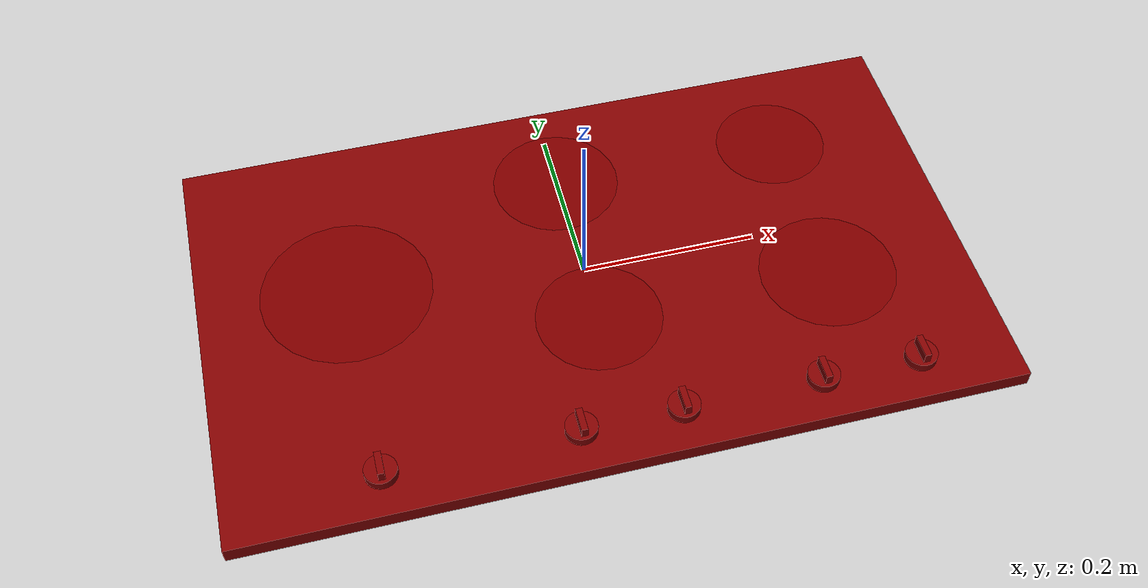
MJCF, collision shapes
<?xml version='1.0' encoding='UTF-8'?>
<mujoco model="model">
  <option timestep="0.002" gravity="0.0 0.0 -9.81"/>
  <compiler angle="radian"/>
  <asset>
    <mesh file="visuals/knob_front_center.obj" name="knob_front_center_vis"/>
    <mesh file="visuals/knob_front_left.obj" name="knob_front_left_vis"/>
    <mesh file="visuals/knob_front_right.obj" name="knob_front_right_vis"/>
    <mesh file="visuals/knob_rear_center.obj" name="knob_rear_center_vis"/>
    <mesh file="visuals/knob_rear_right.obj" name="knob_rear_right_vis"/>
    <mesh file="visuals/Body001.obj" name="Body001_vis"/>
    <texture file="visuals/T_BC001.png" name="Body001_material" type="2d"/>
    <material name="Body001_material" rgba="1 1 1 1.0" texture="Body001_material" shininess="0.4472135901451111" specular="3"/>
    <texture file="visuals/T_BC001.png" name="knob_front_center_material" type="2d"/>
    <material name="knob_front_center_material" rgba="1 1 1 1.0" texture="knob_front_center_material" shininess="0.4472135901451111" specular="0.3103448502657381"/>
    <texture file="visuals/T_BC001.png" name="knob_front_left_material" type="2d"/>
    <material name="knob_front_left_material" rgba="1 1 1 1.0" texture="knob_front_left_material" shininess="0.4472135901451111" specular="0.3103448502657381"/>
    <texture file="visuals/T_BC001.png" name="knob_front_right_material" type="2d"/>
    <material name="knob_front_right_material" rgba="1 1 1 1.0" texture="knob_front_right_material" shininess="0.4472135901451111" specular="0.3103448502657381"/>
    <texture file="visuals/T_BC001.png" name="knob_rear_center_material" type="2d"/>
    <material name="knob_rear_center_material" rgba="1 1 1 1.0" texture="knob_rear_center_material" shininess="0.4472135901451111" specular="0.3103448502657381"/>
    <texture file="visuals/T_BC001.png" name="knob_rear_right_material" type="2d"/>
    <material name="knob_rear_right_material" rgba="1 1 1 1.0" texture="knob_rear_right_material" shininess="0.4472135901451111" specular="0.3103448502657381"/>
  </asset>
  <default>
    <default class="visual">
      <geom conaffinity="0" contype="0" group="1" type="mesh"/>
    </default>
    <default class="collision">
      <geom group="0" rgba="0.5 0 0 0.5"/>
    </default>
    <default class="spawn">
      <geom group="0" rgba="1 1 1 0.5" contype="0" conaffinity="0"/>
      <site group="0" rgba="1 1 1 0.5"/>
    </default>
    <default class="region">
      <geom group="1" conaffinity="0" contype="0" rgba="0 1 0 0"/>
    </default>
  </default>
  <worldbody>
    <body>
      <body name="object">
        <geom mesh="Body001_vis" type="mesh" solimp="0.998 0.998 0.001" solref="0.001 1" friction="0.95 0.3 0.1" class="visual" material="Body001_material"/>
        <geom class="collision" type="box" pos="0.00000001 0.00000001 -0.01176079" size="0.43431878089904785 0.2541465163230896 0.009736603125929832" quat="1.0 0.0 0.0 0.0"/>
        <body name="knob_front_center">
          <joint axis="0.0 0.0 1.0" pos="0.05717969 -0.20574689 0.01845414" limited="true" name="knob_front_center_joint" range="0.0 3.141592653589793" type="hinge" damping="0.2" armature="0.01" frictionloss="1"/>
          <geom mesh="knob_front_center_vis" type="mesh" solimp="0.998 0.998 0.001" solref="0.001 1" friction="0.95 0.3 0.1" class="visual" material="knob_front_center_material"/>
          <geom class="collision" type="cylinder" pos="0.05697663 -0.20595559 0.00397481" size="0.0178717989474535 0.005303556565195322" quat="1.0 0.0 0.0 0.0" friction="100 0.5 0.01"/>
          <geom class="collision" type="box" pos="0.05725353 -0.20592368 0.01553621" size="0.0036588506773114204 0.013517496176064014 0.006199978291988373" quat="1.0 0.0 0.0 0.0" name="knob_front_center_main" friction="100 0.5 0.01"/>
        </body>
        <body name="knob_front_left">
          <joint axis="0.0 0.0 1.0" pos="-0.26706538 -0.20574689 0.01845414" limited="true" name="knob_front_left_joint" range="0.0 3.141592653589793" type="hinge" damping="0.2" armature="0.01" frictionloss="1"/>
          <geom mesh="knob_front_left_vis" type="mesh" solimp="0.998 0.998 0.001" solref="0.001 1" friction="0.95 0.3 0.1" class="visual" material="knob_front_left_material"/>
          <geom class="collision" type="cylinder" pos="-0.26686233 -0.20595559 0.00397481" size="0.0178717989474535 0.005303556565195322" quat="1.0 0.0 0.0 0.0" friction="100 0.5 0.01"/>
          <geom class="collision" type="box" pos="-0.26700413 -0.20592368 0.01553621" size="0.0036588506773114204 0.013517496176064014 0.006199978291988373" quat="1.0 0.0 0.0 0.0" name="knob_front_left_main" friction="100 0.5 0.01"/>
        </body>
        <body name="knob_front_right">
          <joint axis="0.0 0.0 1.0" pos="0.32540047 -0.20574689 0.01845414" limited="true" name="knob_front_right_joint" range="0.0 3.141592653589793" type="hinge" damping="0.2" armature="0.01" frictionloss="1"/>
          <geom mesh="knob_front_right_vis" type="mesh" solimp="0.998 0.998 0.001" solref="0.001 1" friction="0.95 0.3 0.1" class="visual" material="knob_front_right_material"/>
          <geom class="collision" type="cylinder" pos="0.32519740 -0.20595559 0.00397481" size="0.0178717989474535 0.005303556565195322" quat="1.0 0.0 0.0 0.0" friction="100 0.5 0.01"/>
          <geom class="collision" type="box" pos="0.32549194 -0.20592368 0.01553621" size="0.0036588506773114204 0.013517496176064014 0.006199978291988373" quat="1.0 0.0 0.0 0.0" name="knob_front_right_main" friction="100 0.5 0.01"/>
        </body>
        <body name="knob_rear_center">
          <joint axis="0.0 0.0 1.0" pos="-0.05486904 -0.20574689 0.01845414" limited="true" name="knob_rear_center_joint" range="0.0 3.141592653589793" type="hinge" damping="0.2" armature="0.01" frictionloss="1"/>
          <geom mesh="knob_rear_center_vis" type="mesh" solimp="0.998 0.998 0.001" solref="0.001 1" friction="0.95 0.3 0.1" class="visual" material="knob_rear_center_material"/>
          <geom class="collision" type="cylinder" pos="-0.05507210 -0.20595559 0.00397481" size="0.0178717989474535 0.005303556565195322" quat="1.0 0.0 0.0 0.0" friction="100 0.5 0.01"/>
          <geom class="collision" type="box" pos="-0.05474079 -0.20592368 0.01553621" size="0.0036588506773114204 0.013517496176064014 0.006199978291988373" quat="1.0 0.0 0.0 0.0" name="knob_rear_center_main" friction="100 0.5 0.01"/>
        </body>
        <body name="knob_rear_right">
          <joint axis="0.0 0.0 1.0" pos="0.21335179 -0.20574689 0.01845414" limited="true" name="knob_rear_right_joint" range="0.0 3.141592653589793" type="hinge" damping="0.2" armature="0.01" frictionloss="1"/>
          <geom mesh="knob_rear_right_vis" type="mesh" solimp="0.998 0.998 0.001" solref="0.001 1" friction="0.95 0.3 0.1" class="visual" material="knob_rear_right_material"/>
          <geom class="collision" type="cylinder" pos="0.21314873 -0.20595559 0.00397481" size="0.0178717989474535 0.005303556565195322" quat="1.0 0.0 0.0 0.0" friction="100 0.5 0.01"/>
          <geom class="collision" type="box" pos="0.21330883 -0.20592368 0.01553621" size="0.0036588506773114204 0.013517496176064014 0.006199978291988373" quat="1.0 0.0 0.0 0.0" name="knob_rear_right_main" friction="100 0.5 0.01"/>
        </body>
        <site type="cylinder" rgba="0.5 0 0 0.5" size="0.06582891196012497 0.0001" pos="0.26937610 0.13737881 -0.00204628" name="burner_on_rear_right"/>
        <site type="cylinder" rgba="0.5 0 0 0.5" size="0.07447659224271774 0.0001" pos="-0.00046534 0.13936402 -0.00202417" name="burner_on_rear_center"/>
        <site type="cylinder" rgba="0.5 0 0 0.5" size="0.07853426039218903 0.0001" pos="0.26937470 -0.06694555 -0.00202414" name="burner_on_front_right"/>
        <site type="cylinder" rgba="0.5 0 0 0.5" size="0.09763045608997345 0.0001" pos="-0.26735020 0.03702752 -0.00202417" name="burner_on_front_left"/>
        <site type="cylinder" rgba="0.5 0 0 0.5" size="0.07156434655189514 0.0001" pos="0.00016449 -0.06667775 -0.00202420" name="burner_on_front_center"/>
        <site name="burner_rear_right_place_site" type="cylinder" rgba="0.5 0 0 0" size="0.06582891196012497 4.999999873689376e-05" pos="0.26937610 0.13737881 -0.00204628"/>
        <site name="burner_rear_center_place_site" type="cylinder" rgba="0.5 0 0 0" size="0.07447659224271774 4.999999873689376e-05" pos="-0.00046534 0.13936402 -0.00202417"/>
        <site name="burner_front_right_place_site" type="cylinder" rgba="0.5 0 0 0" size="0.07853426039218903 4.9999991460936144e-05" pos="0.26937470 -0.06694555 -0.00202414"/>
        <site name="burner_front_left_place_site" type="cylinder" rgba="0.5 0 0 0" size="0.09763045608997345 4.999999873689376e-05" pos="-0.26735020 0.03702752 -0.00202417"/>
        <site name="burner_front_center_place_site" type="cylinder" rgba="0.5 0 0 0" size="0.07156434655189514 4.999999873689376e-05" pos="0.00016449 -0.06667775 -0.00202420"/>
        <geom class="region" name="reg_main" type="box" pos="1.0000000022492017e-08 0.0 -0.011732825" size="0.43531875 0.25514652 0.010764625"/>
      </body>
    </body>
  </worldbody>
  <actuator>
    <motor name="knob_front_center_joint_actuator" joint="knob_front_center_joint" gear="10"/>
    <motor name="knob_front_left_joint_actuator" joint="knob_front_left_joint" gear="10"/>
    <motor name="knob_front_right_joint_actuator" joint="knob_front_right_joint" gear="10"/>
    <motor name="knob_rear_center_joint_actuator" joint="knob_rear_center_joint" gear="10"/>
    <motor name="knob_rear_right_joint_actuator" joint="knob_rear_right_joint" gear="10"/>
  </actuator>
</mujoco>
